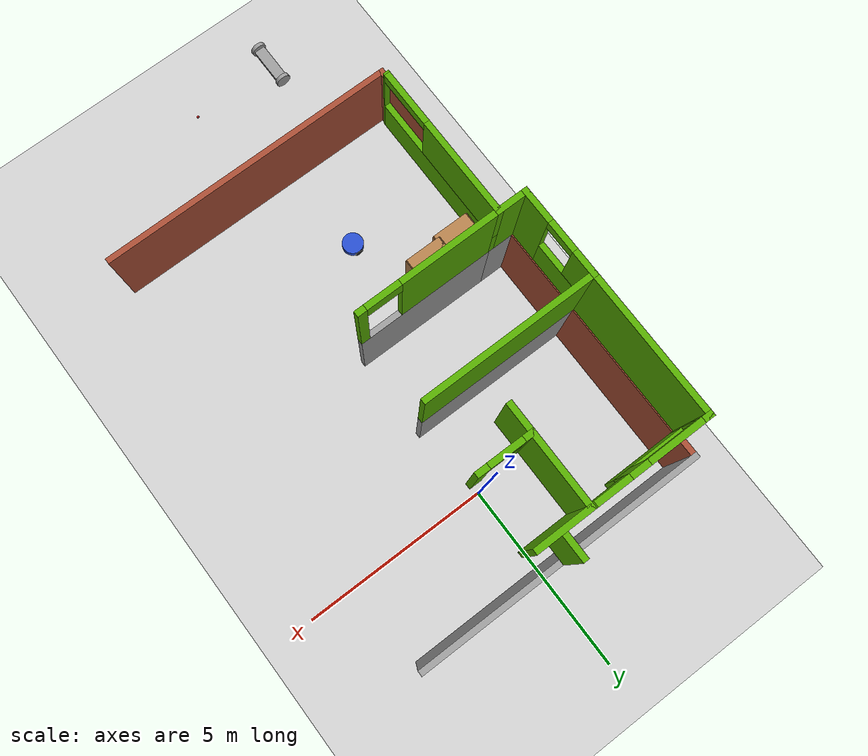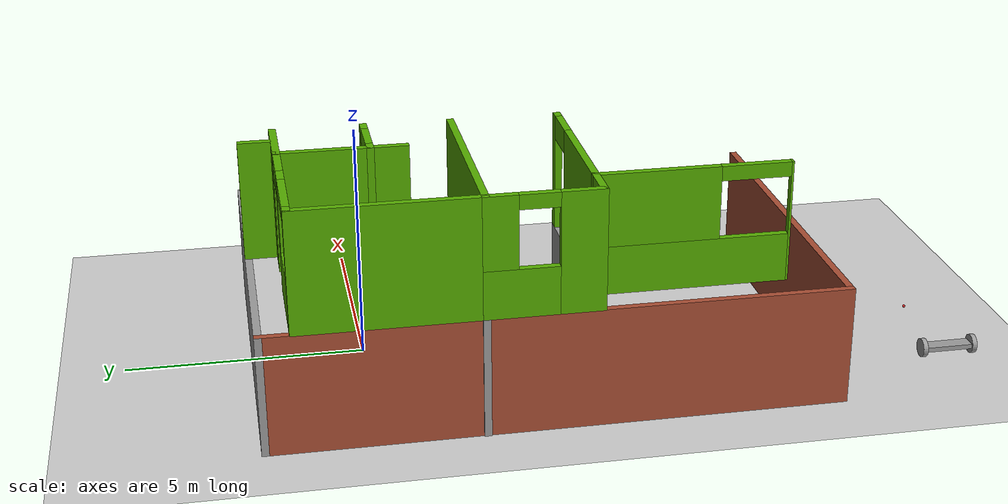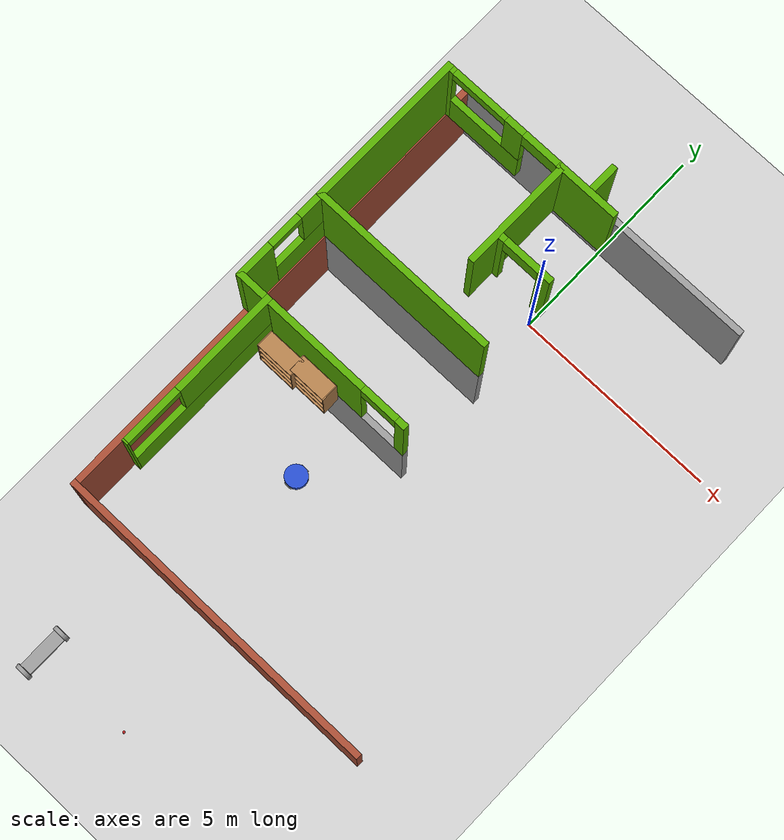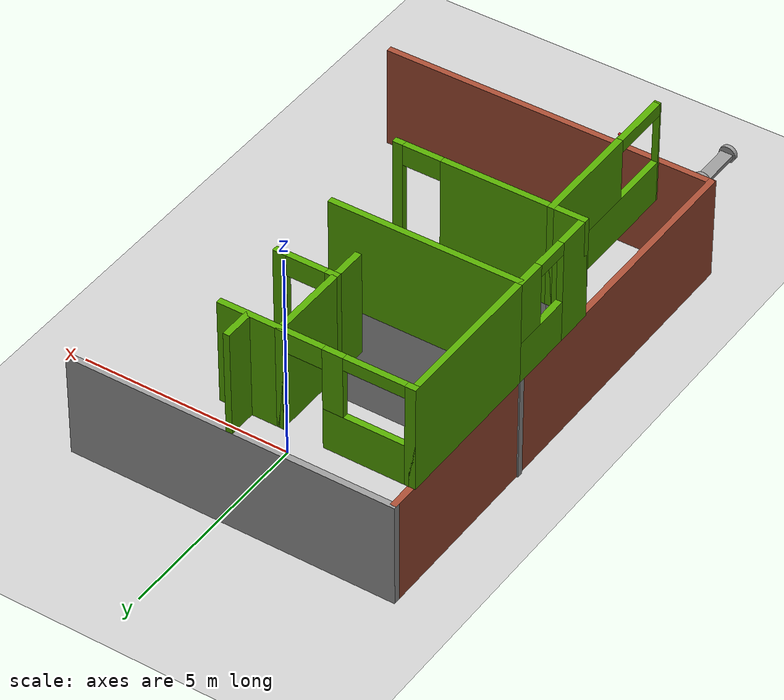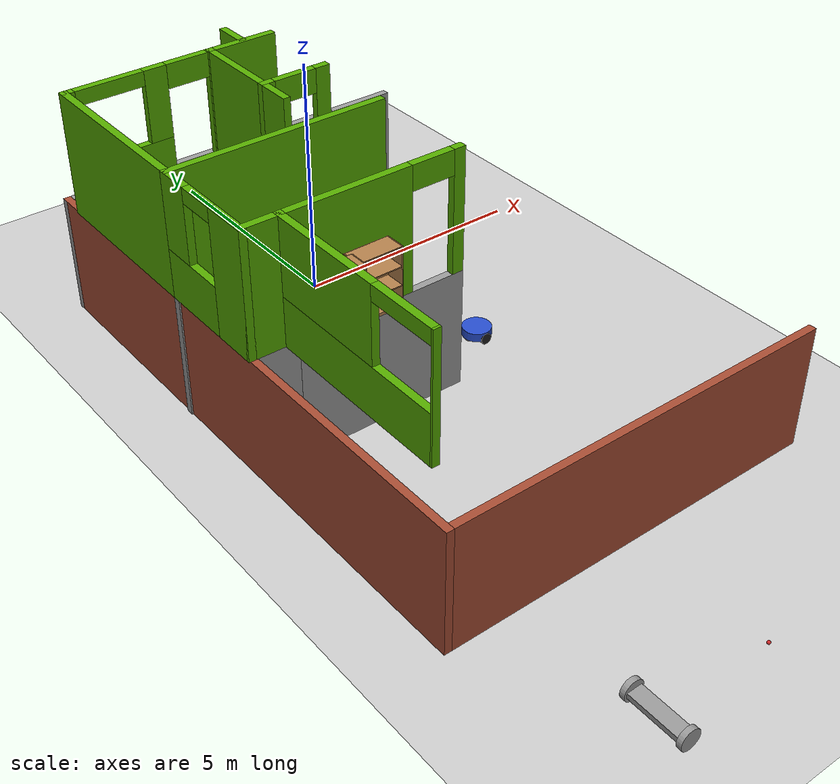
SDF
<sdf version="1.6">
 <world name="default">
  <model name="ground_plane">
   <static>1</static>
   <link name="link">
    <collision name="collision">
     <geometry><plane><normal>0 0 1</normal><size>100 100</size></plane></geometry>
     <surface><friction><ode><mu>100</mu><mu2>50</mu2></ode></friction></surface>
    </collision>
    <visual name="visual">
     <cast_shadows>0</cast_shadows>
     <geometry><plane><normal>0 0 1</normal><size>100 100</size></plane></geometry>
     <material>
      <script><uri>file://media/materials/scripts/gazebo.material</uri><name>Gazebo/Grey</name></script>
     </material>
    </visual>
   </link>
  </model>
  <model name="2floorHouse">
   <pose>4.58828 -3.57771 0 0 -0 0</pose>
   <link name="Wall_293">
    <pose>-7.97079 -2.615 2.5 0 -0 1.5708</pose>
    <visual name="Wall_293_Visual_0">
     <pose>-1.97712 0 1.25 0 -0 0</pose>
     <geometry><box><size>0.045764 0.15 2.5</size></box></geometry>
     <material>
      <script><uri>file://media/materials/scripts/gazebo.material</uri><name>Gazebo/Grey</name></script>
      <ambient>0.333333 0.666667 0 1</ambient>
     </material>
    </visual>
    <collision name="Wall_293_Collision_0">
     <geometry><box><size>0.045764 0.15 2.5</size></box></geometry>
     <pose>-1.97712 0 1.25 0 -0 0</pose>
    </collision>
    <visual name="Wall_293_Visual_1">
     <pose>0.022882 0 0.5 0 -0 0</pose>
     <geometry><box><size>3.95424 0.15 1</size></box></geometry>
     <material>
      <script><uri>file://media/materials/scripts/gazebo.material</uri><name>Gazebo/Grey</name></script>
      <ambient>0.333333 0.666667 0 1</ambient>
     </material>
    </visual>
    <collision name="Wall_293_Collision_1">
     <geometry><box><size>3.95424 0.15 1</size></box></geometry>
     <pose>0.022882 0 0.5 0 -0 0</pose>
    </collision>
    <visual name="Wall_293_Visual_2">
     <pose>0.722882 0 1.75 0 -0 0</pose>
     <geometry><box><size>2.55424 0.15 1.5</size></box></geometry>
     <material>
      <script><uri>file://media/materials/scripts/gazebo.material</uri><name>Gazebo/Grey</name></script>
      <ambient>0.333333 0.666667 0 1</ambient>
     </material>
    </visual>
    <collision name="Wall_293_Collision_2">
     <geometry><box><size>2.55424 0.15 1.5</size></box></geometry>
     <pose>0.722882 0 1.75 0 -0 0</pose>
    </collision>
    <visual name="Wall_293_Visual_3">
     <pose>-1.25424 0 2.35 0 -0 0</pose>
     <geometry><box><size>1.4 0.15 0.3</size></box></geometry>
     <material>
      <script><uri>file://media/materials/scripts/gazebo.material</uri><name>Gazebo/Grey</name></script>
      <ambient>0.333333 0.666667 0 1</ambient>
     </material>
    </visual>
    <collision name="Wall_293_Collision_3">
     <geometry><box><size>1.4 0.15 0.3</size></box></geometry>
     <pose>-1.25424 0 2.35 0 -0 0</pose>
    </collision>
   </link>
   <link name="Wall_294">
    <collision name="Wall_294_Collision">
     <geometry><box><size>0.86941 0.15 2.5</size></box></geometry>
     <pose>0 0 1.25 0 -0 0</pose>
    </collision>
    <visual name="Wall_294_Visual">
     <pose>0 0 1.25 0 -0 0</pose>
     <geometry><box><size>0.86941 0.15 2.5</size></box></geometry>
     <material>
      <script><uri>file://media/materials/scripts/gazebo.material</uri><name>Gazebo/Grey</name></script>
      <ambient>0.333333 0.666667 0 1</ambient>
     </material>
    </visual>
    <pose>-8.3305 -0.690004 2.5 0 -0 3.14159</pose>
   </link>
   <link name="Wall_295">
    <pose>-8.69021 0.434996 2.5 0 -0 1.5708</pose>
    <visual name="Wall_295_Visual_0">
     <pose>-0.748437 0 1.25 0 -0 0</pose>
     <geometry><box><size>0.903127 0.15 2.5</size></box></geometry>
     <material>
      <script><uri>file://media/materials/scripts/gazebo.material</uri><name>Gazebo/Grey</name></script>
      <ambient>0.333333 0.666667 0 1</ambient>
     </material>
    </visual>
    <collision name="Wall_295_Collision_0">
     <geometry><box><size>0.903127 0.15 2.5</size></box></geometry>
     <pose>-0.748437 0 1.25 0 -0 0</pose>
    </collision>
    <visual name="Wall_295_Visual_1">
     <pose>0.451563 0 0.5 0 -0 0</pose>
     <geometry><box><size>1.49687 0.15 1</size></box></geometry>
     <material>
      <script><uri>file://media/materials/scripts/gazebo.material</uri><name>Gazebo/Grey</name></script>
      <ambient>0.333333 0.666667 0 1</ambient>
     </material>
    </visual>
    <collision name="Wall_295_Collision_1">
     <geometry><box><size>1.49687 0.15 1</size></box></geometry>
     <pose>0.451563 0 0.5 0 -0 0</pose>
    </collision>
    <visual name="Wall_295_Visual_2">
     <pose>0.851563 0 1.75 0 -0 0</pose>
     <geometry><box><size>0.696873 0.15 1.5</size></box></geometry>
     <material>
      <script><uri>file://media/materials/scripts/gazebo.material</uri><name>Gazebo/Grey</name></script>
      <ambient>0.333333 0.666667 0 1</ambient>
     </material>
    </visual>
    <collision name="Wall_295_Collision_2">
     <geometry><box><size>0.696873 0.15 1.5</size></box></geometry>
     <pose>0.851563 0 1.75 0 -0 0</pose>
    </collision>
    <visual name="Wall_295_Visual_3">
     <pose>0.103127 0 2.35 0 -0 0</pose>
     <geometry><box><size>0.8 0.15 0.3</size></box></geometry>
     <material>
      <script><uri>file://media/materials/scripts/gazebo.material</uri><name>Gazebo/Grey</name></script>
      <ambient>0.333333 0.666667 0 1</ambient>
     </material>
    </visual>
    <collision name="Wall_295_Collision_3">
     <geometry><box><size>0.8 0.15 0.3</size></box></geometry>
     <pose>0.103127 0 2.35 0 -0 0</pose>
    </collision>
   </link>
   <link name="Wall_296">
    <collision name="Wall_296_Collision">
     <geometry><box><size>4.5 0.15 2.5</size></box></geometry>
     <pose>0 0 1.25 0 -0 0</pose>
    </collision>
    <visual name="Wall_296_Visual">
     <pose>0 0 1.25 0 -0 0</pose>
     <geometry><box><size>4.5 0.15 2.5</size></box></geometry>
     <material>
      <script><uri>file://media/materials/scripts/gazebo.material</uri><name>Gazebo/Grey</name></script>
      <ambient>0.333333 0.666667 0 1</ambient>
     </material>
    </visual>
    <pose>-6.5152 1.56 2.5 0 -0 0</pose>
   </link>
   <link name="Wall_298">
    <pose>-6.1555 -0.690004 2.5 0 -0 3.14159</pose>
    <visual name="Wall_298_Visual_0">
     <pose>-1.77022 0 1.25 0 -0 0</pose>
     <geometry><box><size>0.240159 0.15 2.5</size></box></geometry>
     <material>
      <script><uri>file://media/materials/scripts/gazebo.material</uri><name>Gazebo/Grey</name></script>
      <ambient>0.333333 0.666667 0 1</ambient>
     </material>
    </visual>
    <collision name="Wall_298_Collision_0">
     <geometry><box><size>0.240159 0.15 2.5</size></box></geometry>
     <pose>-1.77022 0 1.25 0 -0 0</pose>
    </collision>
    <visual name="Wall_298_Visual_1">
     <pose>0.570079 0 1.25 0 -0 0</pose>
     <geometry><box><size>2.64043 0.15 2.5</size></box></geometry>
     <material>
      <script><uri>file://media/materials/scripts/gazebo.material</uri><name>Gazebo/Grey</name></script>
      <ambient>0.333333 0.666667 0 1</ambient>
     </material>
    </visual>
    <collision name="Wall_298_Collision_1">
     <geometry><box><size>2.64043 0.15 2.5</size></box></geometry>
     <pose>0.570079 0 1.25 0 -0 0</pose>
    </collision>
    <visual name="Wall_298_Visual_2">
     <pose>-1.20014 0 2.25 0 -0 0</pose>
     <geometry><box><size>0.9 0.15 0.5</size></box></geometry>
     <material>
      <script><uri>file://media/materials/scripts/gazebo.material</uri><name>Gazebo/Grey</name></script>
      <ambient>0.333333 0.666667 0 1</ambient>
     </material>
    </visual>
    <collision name="Wall_298_Collision_2">
     <geometry><box><size>0.9 0.15 0.5</size></box></geometry>
     <pose>-1.20014 0 2.25 0 -0 0</pose>
    </collision>
   </link>
   <link name="Wall_303">
    <collision name="Wall_303_Collision">
     <geometry><box><size>3.8 0.15 2.5</size></box></geometry>
     <pose>0 0 1.25 0 -0 0</pose>
    </collision>
    <visual name="Wall_303_Visual">
     <pose>0 0 1.25 0 -0 0</pose>
     <geometry><box><size>3.8 0.15 2.5</size></box></geometry>
     <material>
      <script><uri>file://media/materials/scripts/gazebo.material</uri><name>Gazebo/Grey</name></script>
      <ambient>0.333333 0.666667 0 1</ambient>
     </material>
    </visual>
    <pose>-8.69021 3.385 2.5 0 -0 1.5708</pose>
   </link>
   <link name="Wall_304">
    <pose>-7.16521 5.21 2.5 0 -0 0</pose>
    <visual name="Wall_304_Visual_0">
     <pose>-1.47576 0 1.25 0 -0 0</pose>
     <geometry><box><size>0.248475 0.15 2.5</size></box></geometry>
     <material>
      <script><uri>file://media/materials/scripts/gazebo.material</uri><name>Gazebo/Grey</name></script>
      <ambient>0.333333 0.666667 0 1</ambient>
     </material>
    </visual>
    <collision name="Wall_304_Collision_0">
     <geometry><box><size>0.248475 0.15 2.5</size></box></geometry>
     <pose>-1.47576 0 1.25 0 -0 0</pose>
    </collision>
    <visual name="Wall_304_Visual_1">
     <pose>1.51114 0 1.25 0 -0 0</pose>
     <geometry><box><size>0.177722 0.15 2.5</size></box></geometry>
     <material>
      <script><uri>file://media/materials/scripts/gazebo.material</uri><name>Gazebo/Grey</name></script>
      <ambient>0.333333 0.666667 0 1</ambient>
     </material>
    </visual>
    <collision name="Wall_304_Collision_1">
     <geometry><box><size>0.177722 0.15 2.5</size></box></geometry>
     <pose>1.51114 0 1.25 0 -0 0</pose>
    </collision>
    <visual name="Wall_304_Visual_2">
     <pose>-0.414623 0 0.5 0 -0 0</pose>
     <geometry><box><size>1.8738 0.15 1</size></box></geometry>
     <material>
      <script><uri>file://media/materials/scripts/gazebo.material</uri><name>Gazebo/Grey</name></script>
      <ambient>0.333333 0.666667 0 1</ambient>
     </material>
    </visual>
    <collision name="Wall_304_Collision_2">
     <geometry><box><size>1.8738 0.15 1</size></box></geometry>
     <pose>-0.414623 0 0.5 0 -0 0</pose>
    </collision>
    <visual name="Wall_304_Visual_3">
     <pose>0.285377 0 1.75 0 -0 0</pose>
     <geometry><box><size>0.473803 0.15 1.5</size></box></geometry>
     <material>
      <script><uri>file://media/materials/scripts/gazebo.material</uri><name>Gazebo/Grey</name></script>
      <ambient>0.333333 0.666667 0 1</ambient>
     </material>
    </visual>
    <collision name="Wall_304_Collision_3">
     <geometry><box><size>0.473803 0.15 1.5</size></box></geometry>
     <pose>0.285377 0 1.75 0 -0 0</pose>
    </collision>
    <visual name="Wall_304_Visual_4">
     <pose>0.972278 0 2.25 0 -0 0</pose>
     <geometry><box><size>0.9 0.15 0.5</size></box></geometry>
     <material>
      <script><uri>file://media/materials/scripts/gazebo.material</uri><name>Gazebo/Grey</name></script>
      <ambient>0.333333 0.666667 0 1</ambient>
     </material>
    </visual>
    <collision name="Wall_304_Collision_4">
     <geometry><box><size>0.9 0.15 0.5</size></box></geometry>
     <pose>0.972278 0 2.25 0 -0 0</pose>
    </collision>
    <visual name="Wall_304_Visual_5">
     <pose>-0.651525 0 2.35 0 -0 0</pose>
     <geometry><box><size>1.4 0.15 0.3</size></box></geometry>
     <material>
      <script><uri>file://media/materials/scripts/gazebo.material</uri><name>Gazebo/Grey</name></script>
      <ambient>0.333333 0.666667 0 1</ambient>
     </material>
    </visual>
    <collision name="Wall_304_Collision_5">
     <geometry><box><size>1.4 0.15 0.3</size></box></geometry>
     <pose>-0.651525 0 2.35 0 -0 0</pose>
    </collision>
   </link>
   <link name="Wall_305">
    <collision name="Wall_305_Collision">
     <geometry><box><size>2.7 0.15 2.5</size></box></geometry>
     <pose>0 0 1.25 0 -0 0</pose>
    </collision>
    <visual name="Wall_305_Visual">
     <pose>0 0 1.25 0 -0 0</pose>
     <geometry><box><size>2.7 0.15 2.5</size></box></geometry>
     <material>
      <script><uri>file://media/materials/scripts/gazebo.material</uri><name>Gazebo/Grey</name></script>
      <ambient>0.333333 0.666667 0 1</ambient>
     </material>
    </visual>
    <pose>-5.6402 3.935 2.5 0 0 -1.5708</pose>
   </link>
   <link name="Wall_306">
    <collision name="Wall_306_Collision">
     <geometry><box><size>1.5 0.15 2.5</size></box></geometry>
     <pose>0 0 1.25 0 -0 0</pose>
    </collision>
    <visual name="Wall_306_Visual">
     <pose>0 0 1.25 0 -0 0</pose>
     <geometry><box><size>1.5 0.15 2.5</size></box></geometry>
     <material>
      <script><uri>file://media/materials/scripts/gazebo.material</uri><name>Gazebo/Grey</name></script>
      <ambient>0.333333 0.666667 0 1</ambient>
     </material>
    </visual>
    <pose>-4.96521 5.21 2.5 0 -0 0</pose>
   </link>
   <link name="Wall_308">
    <pose>-4.965 3.36 2.5 0 -0 3.14159</pose>
    <visual name="Wall_308_Visual_0">
     <pose>-0.593035 0 1.25 0 -0 0</pose>
     <geometry><box><size>0.314339 0.15 2.5</size></box></geometry>
     <material>
      <script><uri>file://media/materials/scripts/gazebo.material</uri><name>Gazebo/Grey</name></script>
      <ambient>0.333333 0.666667 0 1</ambient>
     </material>
    </visual>
    <collision name="Wall_308_Collision_0">
     <geometry><box><size>0.314339 0.15 2.5</size></box></geometry>
     <pose>-0.593035 0 1.25 0 -0 0</pose>
    </collision>
    <visual name="Wall_308_Visual_1">
     <pose>0.607169 0 1.25 0 -0 0</pose>
     <geometry><box><size>0.286071 0.15 2.5</size></box></geometry>
     <material>
      <script><uri>file://media/materials/scripts/gazebo.material</uri><name>Gazebo/Grey</name></script>
      <ambient>0.333333 0.666667 0 1</ambient>
     </material>
    </visual>
    <collision name="Wall_308_Collision_1">
     <geometry><box><size>0.286071 0.15 2.5</size></box></geometry>
     <pose>0.607169 0 1.25 0 -0 0</pose>
    </collision>
    <visual name="Wall_308_Visual_2">
     <pose>0.014134 0 2.25 0 -0 0</pose>
     <geometry><box><size>0.9 0.15 0.5</size></box></geometry>
     <material>
      <script><uri>file://media/materials/scripts/gazebo.material</uri><name>Gazebo/Grey</name></script>
      <ambient>0.333333 0.666667 0 1</ambient>
     </material>
    </visual>
    <collision name="Wall_308_Collision_2">
     <geometry><box><size>0.9 0.15 0.5</size></box></geometry>
     <pose>0.014134 0 2.25 0 -0 0</pose>
    </collision>
   </link>
   <link name="Wall_319">
    <collision name="Wall_319_Collision">
     <geometry><box><size>0.75 0.15 2.5</size></box></geometry>
     <pose>0 0 1.25 0 -0 0</pose>
    </collision>
    <visual name="Wall_319_Visual">
     <pose>0 0 1.25 0 -0 0</pose>
     <geometry><box><size>0.75 0.15 2.5</size></box></geometry>
     <material>
      <script><uri>file://media/materials/scripts/gazebo.material</uri><name>Gazebo/Grey</name></script>
      <ambient>0.333333 0.666667 0 1</ambient>
     </material>
    </visual>
    <pose>-4.90971 5.56961 2.5 0 0 -1.5708</pose>
   </link>
   <link name="Wall_351">
    <collision name="Wall_351_Collision">
     <geometry><box><size>7.75 0.15 2.5</size></box></geometry>
     <pose>0 0 1.25 0 -0 0</pose>
    </collision>
    <visual name="Wall_351_Visual">
     <pose>0 0 1.25 0 -0 0</pose>
     <geometry><box><size>7.75 0.15 2.5</size></box></geometry>
     <material>
      <script><uri>file://media/materials/scripts/gazebo.material</uri><name>Gazebo/Grey</name></script>
      <ambient>1 1 1 1</ambient>
     </material>
    </visual>
    <pose>-4.8598 5.87 0 0 -0 3.14159</pose>
   </link>
   <link name="Wall_352">
    <collision name="Wall_352_Collision">
     <geometry><box><size>11.75 0.15 2.5</size></box></geometry>
     <pose>0 0 1.25 0 -0 0</pose>
    </collision>
    <visual name="Wall_352_Visual">
     <pose>0 0 1.25 0 -0 0</pose>
     <geometry><box><size>11.75 0.15 2.5</size></box></geometry>
     <material>
      <script><uri>file://media/materials/scripts/gazebo.material</uri><name>Gazebo/Bricks</name></script>
      <ambient>1 1 1 1</ambient>
     </material>
    </visual>
    <pose>-8.6598 0.069996 0 0 0 -1.5708</pose>
   </link>
   <link name="Wall_357">
    <collision name="Wall_357_Collision">
     <geometry><box><size>8 0.15 2.5</size></box></geometry>
     <pose>0 0 1.25 0 -0 0</pose>
    </collision>
    <visual name="Wall_357_Visual">
     <pose>0 0 1.25 0 -0 0</pose>
     <geometry><box><size>8 0.15 2.5</size></box></geometry>
     <material>
      <script><uri>file://media/materials/scripts/gazebo.material</uri><name>Gazebo/Bricks</name></script>
      <ambient>1 1 1 1</ambient>
     </material>
    </visual>
    <pose>-4.7348 -5.73 0 0 -0 0</pose>
   </link>
   <link name="Wall_43">
    <collision name="Wall_43_Collision">
     <geometry><box><size>0.873056 0.15 2.5</size></box></geometry>
     <pose>0 0 1.25 0 -0 0</pose>
    </collision>
    <visual name="Wall_43_Visual">
     <pose>0 0 1.25 0 -0 0</pose>
     <geometry><box><size>0.873056 0.15 2.5</size></box></geometry>
     <material>
      <script><uri>file://media/materials/scripts/gazebo.material</uri><name>Gazebo/Grey</name></script>
      <ambient>1 1 1 1</ambient>
     </material>
    </visual>
    <pose>-8.20927 -0.690004 0 0 -0 3.14159</pose>
   </link>
   <link name="Wall_48">
    <collision name="Wall_48_Collision">
     <geometry><box><size>4.5 0.15 2.5</size></box></geometry>
     <pose>0 0 1.25 0 -0 0</pose>
    </collision>
    <visual name="Wall_48_Visual">
     <pose>0 0 1.25 0 -0 0</pose>
     <geometry><box><size>4.5 0.15 2.5</size></box></geometry>
     <material>
      <script><uri>file://media/materials/scripts/gazebo.material</uri><name>Gazebo/Grey</name></script>
      <ambient>1 1 1 1</ambient>
     </material>
    </visual>
    <pose>-6.5152 1.56 0 0 -0 0</pose>
   </link>
   <link name="Wall_52">
    <collision name="Wall_52_Collision">
     <geometry><box><size>3.65753 0.15 2.5</size></box></geometry>
     <pose>0 0 1.25 0 -0 0</pose>
    </collision>
    <visual name="Wall_52_Visual">
     <pose>0 0 1.25 0 -0 0</pose>
     <geometry><box><size>3.65753 0.15 2.5</size></box></geometry>
     <material>
      <script><uri>file://media/materials/scripts/gazebo.material</uri><name>Gazebo/Grey</name></script>
      <ambient>1 1 1 1</ambient>
     </material>
    </visual>
    <pose>-6.09397 -0.690004 0 0 -0 3.14159</pose>
   </link>
   <static>1</static>
  </model>
  <model name="RoboCup SPL Ball">
   <static>0</static>
   <link name="ball">
    <inertial>
     <mass>0.0056</mass>
     <inertia>
      <ixx>2.37e-06</ixx>
      <iyy>2.37e-06</iyy>
      <izz>2.37e-06</izz>
      <ixy>0</ixy>
      <ixz>0</ixz>
      <iyz>0</iyz>
     </inertia>
    </inertial>
    <collision name="collision"><geometry><sphere><radius>0.0325</radius></sphere></geometry></collision>
    <visual name="visual">
     <geometry><sphere><radius>0.0325</radius></sphere></geometry>
     <material>
      <script><uri>file://media/materials/scripts/gazebo.material</uri><name>Gazebo/RedBright</name></script>
     </material>
    </visual>
   </link>
   <pose>-0.153773 -12.2161 0.0425 0 -0 0</pose>
  </model>
  <model name="bookshelf">
   <static>1</static>
   <link name="link">
    <inertial><mass>1</mass></inertial>
    <collision name="back">
     <pose>0 0.005 0.6 0 -0 0</pose>
     <geometry><box><size>0.9 0.01 1.2</size></box></geometry>
    </collision>
    <visual name="visual1">
     <pose>0 0.005 0.6 0 -0 0</pose>
     <geometry><box><size>0.9 0.01 1.2</size></box></geometry>
     <material>
      <script><uri>file://media/materials/scripts/gazebo.material</uri><name>Gazebo/Wood</name></script>
     </material>
    </visual>
    <collision name="left_side">
     <pose>0.45 -0.195 0.6 0 -0 0</pose>
     <geometry><box><size>0.02 0.4 1.2</size></box></geometry>
    </collision>
    <visual name="visual2">
     <pose>0.45 -0.195 0.6 0 -0 0</pose>
     <geometry><box><size>0.02 0.4 1.2</size></box></geometry>
     <material>
      <script><uri>file://media/materials/scripts/gazebo.material</uri><name>Gazebo/Wood</name></script>
     </material>
    </visual>
    <collision name="right_side">
     <pose>-0.45 -0.195 0.6 0 -0 0</pose>
     <geometry><box><size>0.02 0.4 1.2</size></box></geometry>
    </collision>
    <visual name="visual3">
     <pose>-0.45 -0.195 0.6 0 -0 0</pose>
     <geometry><box><size>0.02 0.4 1.2</size></box></geometry>
     <material>
      <script><uri>file://media/materials/scripts/gazebo.material</uri><name>Gazebo/Wood</name></script>
     </material>
    </visual>
    <collision name="bottom">
     <pose>0 -0.195 0.03 0 -0 0</pose>
     <geometry><box><size>0.88 0.4 0.06</size></box></geometry>
    </collision>
    <visual name="visual4">
     <pose>0 -0.195 0.03 0 -0 0</pose>
     <geometry><box><size>0.88 0.4 0.06</size></box></geometry>
     <material>
      <script><uri>file://media/materials/scripts/gazebo.material</uri><name>Gazebo/Wood</name></script>
     </material>
    </visual>
    <collision name="top">
     <pose>0 -0.195 1.19 0 -0 0</pose>
     <geometry><box><size>0.88 0.4 0.02</size></box></geometry>
    </collision>
    <visual name="visual5">
     <pose>0 -0.195 1.19 0 -0 0</pose>
     <geometry><box><size>0.88 0.4 0.02</size></box></geometry>
     <material>
      <script><uri>file://media/materials/scripts/gazebo.material</uri><name>Gazebo/Wood</name></script>
     </material>
    </visual>
    <collision name="low_shelf">
     <pose>0 -0.195 0.43 0 -0 0</pose>
     <geometry><box><size>0.88 0.4 0.02</size></box></geometry>
    </collision>
    <visual name="visual6">
     <pose>0 -0.195 0.43 0 -0 0</pose>
     <geometry><box><size>0.88 0.4 0.02</size></box></geometry>
     <material>
      <script><uri>file://media/materials/scripts/gazebo.material</uri><name>Gazebo/Wood</name></script>
     </material>
    </visual>
    <collision name="high_shelf">
     <pose>0 -0.195 0.8 0 -0 0</pose>
     <geometry><box><size>0.88 0.4 0.02</size></box></geometry>
    </collision>
    <visual name="visual7">
     <pose>0 -0.195 0.8 0 -0 0</pose>
     <geometry><box><size>0.88 0.4 0.02</size></box></geometry>
     <material>
      <script><uri>file://media/materials/scripts/gazebo.material</uri><name>Gazebo/Wood</name></script>
     </material>
    </visual>
   </link>
   <pose>-2.65257 -4.5149 2.70784 0 -0 0</pose>
  </model>
  <model name="bookshelf_clone">
   <static>1</static>
   <link name="link">
    <inertial><mass>1</mass></inertial>
    <collision name="back">
     <pose>0 0.005 0.6 0 -0 0</pose>
     <geometry><box><size>0.9 0.01 1.2</size></box></geometry>
    </collision>
    <visual name="visual1">
     <pose>0 0.005 0.6 0 -0 0</pose>
     <geometry><box><size>0.9 0.01 1.2</size></box></geometry>
     <material>
      <script><uri>file://media/materials/scripts/gazebo.material</uri><name>Gazebo/Wood</name></script>
     </material>
    </visual>
    <collision name="left_side">
     <pose>0.45 -0.195 0.6 0 -0 0</pose>
     <geometry><box><size>0.02 0.4 1.2</size></box></geometry>
    </collision>
    <visual name="visual2">
     <pose>0.45 -0.195 0.6 0 -0 0</pose>
     <geometry><box><size>0.02 0.4 1.2</size></box></geometry>
     <material>
      <script><uri>file://media/materials/scripts/gazebo.material</uri><name>Gazebo/Wood</name></script>
     </material>
    </visual>
    <collision name="right_side">
     <pose>-0.45 -0.195 0.6 0 -0 0</pose>
     <geometry><box><size>0.02 0.4 1.2</size></box></geometry>
    </collision>
    <visual name="visual3">
     <pose>-0.45 -0.195 0.6 0 -0 0</pose>
     <geometry><box><size>0.02 0.4 1.2</size></box></geometry>
     <material>
      <script><uri>file://media/materials/scripts/gazebo.material</uri><name>Gazebo/Wood</name></script>
     </material>
    </visual>
    <collision name="bottom">
     <pose>0 -0.195 0.03 0 -0 0</pose>
     <geometry><box><size>0.88 0.4 0.06</size></box></geometry>
    </collision>
    <visual name="visual4">
     <pose>0 -0.195 0.03 0 -0 0</pose>
     <geometry><box><size>0.88 0.4 0.06</size></box></geometry>
     <material>
      <script><uri>file://media/materials/scripts/gazebo.material</uri><name>Gazebo/Wood</name></script>
     </material>
    </visual>
    <collision name="top">
     <pose>0 -0.195 1.19 0 -0 0</pose>
     <geometry><box><size>0.88 0.4 0.02</size></box></geometry>
    </collision>
    <visual name="visual5">
     <pose>0 -0.195 1.19 0 -0 0</pose>
     <geometry><box><size>0.88 0.4 0.02</size></box></geometry>
     <material>
      <script><uri>file://media/materials/scripts/gazebo.material</uri><name>Gazebo/Wood</name></script>
     </material>
    </visual>
    <collision name="low_shelf">
     <pose>0 -0.195 0.43 0 -0 0</pose>
     <geometry><box><size>0.88 0.4 0.02</size></box></geometry>
    </collision>
    <visual name="visual6">
     <pose>0 -0.195 0.43 0 -0 0</pose>
     <geometry><box><size>0.88 0.4 0.02</size></box></geometry>
     <material>
      <script><uri>file://media/materials/scripts/gazebo.material</uri><name>Gazebo/Wood</name></script>
     </material>
    </visual>
    <collision name="high_shelf">
     <pose>0 -0.195 0.8 0 -0 0</pose>
     <geometry><box><size>0.88 0.4 0.02</size></box></geometry>
    </collision>
    <visual name="visual7">
     <pose>0 -0.195 0.8 0 -0 0</pose>
     <geometry><box><size>0.88 0.4 0.02</size></box></geometry>
     <material>
      <script><uri>file://media/materials/scripts/gazebo.material</uri><name>Gazebo/Wood</name></script>
     </material>
    </visual>
   </link>
   <pose>-1.85138 -4.43483 2.70784 0 -0 0</pose>
  </model>
  <model name="Tartufino">
   <link name="link_0">
    <pose>0 0 0.04 0 -0 0</pose>
    <inertial>
     <mass>1</mass>
     <inertia><ixx>0.145833</ixx><ixy>0</ixy><ixz>0</ixz><iyy>0.145833</iyy><iyz>0</iyz><izz>0.125</izz></inertia>
    </inertial>
    <visual name="visual">
     <geometry><cylinder><radius>0.25</radius><length>0.15</length></cylinder></geometry>
     <material>
      <lighting>1</lighting>
      <script><uri>file://media/materials/scripts/gazebo.material</uri><name>Gazebo/Blue</name></script>
      <ambient>0.3 0.3 0.3 1</ambient>
      <diffuse>0.7 0.7 0.7 1</diffuse>
      <specular>0.01 0.01 0.01 1</specular>
      <emissive>0 0 0 1</emissive>
      <shader type="vertex"><normal_map>__default__</normal_map></shader>
     </material>
    </visual>
    <collision name="collision">
     <geometry><cylinder><radius>0.25</radius><length>0.15</length></cylinder></geometry>
     <surface>
      <friction>
       <ode><mu>1</mu><mu2>1</mu2><fdir1>0 0 0</fdir1><slip1>0</slip1><slip2>0</slip2></ode>
       <torsional>
        <coefficient>1</coefficient>
        <patch_radius>0</patch_radius>
        <surface_radius>0</surface_radius>
        <use_patch_radius>1</use_patch_radius>
        <ode><slip>0</slip></ode>
       </torsional>
      </friction>
      <bounce><restitution_coefficient>0</restitution_coefficient><threshold>1e+06</threshold></bounce>
      <contact>
       <collide_without_contact>0</collide_without_contact>
       <collide_without_contact_bitmask>1</collide_without_contact_bitmask>
       <collide_bitmask>1</collide_bitmask>
       <ode>
        <soft_cfm>0</soft_cfm>
        <soft_erp>0.2</soft_erp>
        <kp>1e+13</kp>
        <kd>1</kd>
        <max_vel>0.01</max_vel>
        <min_depth>0</min_depth>
       </ode>
       <bullet>
        <split_impulse>1</split_impulse>
        <split_impulse_penetration_threshold>-0.01</split_impulse_penetration_threshold>
        <soft_cfm>0</soft_cfm>
        <soft_erp>0.2</soft_erp>
        <kp>1e+13</kp>
        <kd>1</kd>
       </bullet>
      </contact>
     </surface>
    </collision>
   </link>
   <link name="link_1">
    <pose>0 0.2 -0.01 0 -0 0</pose>
    <inertial>
     <mass>1</mass>
     <inertia><ixx>0.145833</ixx><ixy>0</ixy><ixz>0</ixz><iyy>0.145833</iyy><iyz>0</iyz><izz>0.125</izz></inertia>
    </inertial>
    <visual name="visual">
     <pose>0 0 0 1.5708 -0 0</pose>
     <geometry><cylinder><radius>0.1</radius><length>0.1</length></cylinder></geometry>
     <material>
      <lighting>1</lighting>
      <script><uri>file://media/materials/scripts/gazebo.material</uri><name>Gazebo/Black</name></script>
      <ambient>0.3 0.3 0.3 1</ambient>
      <diffuse>0.7 0.7 0.7 1</diffuse>
      <specular>0.01 0.01 0.01 1</specular>
      <emissive>0 0 0 1</emissive>
      <shader type="vertex"><normal_map>__default__</normal_map></shader>
     </material>
    </visual>
    <collision name="collision">
     <pose>0 0 0 1.5708 -0 0</pose>
     <geometry><cylinder><radius>0.1</radius><length>0.1</length></cylinder></geometry>
     <surface>
      <friction>
       <ode><mu>1</mu><mu2>1</mu2><fdir1>0 0 0</fdir1><slip1>0</slip1><slip2>0</slip2></ode>
       <torsional>
        <coefficient>1</coefficient>
        <patch_radius>0</patch_radius>
        <surface_radius>0</surface_radius>
        <use_patch_radius>1</use_patch_radius>
        <ode><slip>0</slip></ode>
       </torsional>
      </friction>
      <bounce><restitution_coefficient>0</restitution_coefficient><threshold>1e+06</threshold></bounce>
      <contact>
       <collide_without_contact>0</collide_without_contact>
       <collide_without_contact_bitmask>1</collide_without_contact_bitmask>
       <collide_bitmask>1</collide_bitmask>
       <ode>
        <soft_cfm>0</soft_cfm>
        <soft_erp>0.2</soft_erp>
        <kp>1e+13</kp>
        <kd>1</kd>
        <max_vel>0.01</max_vel>
        <min_depth>0</min_depth>
       </ode>
       <bullet>
        <split_impulse>1</split_impulse>
        <split_impulse_penetration_threshold>-0.01</split_impulse_penetration_threshold>
        <soft_cfm>0</soft_cfm>
        <soft_erp>0.2</soft_erp>
        <kp>1e+13</kp>
        <kd>1</kd>
       </bullet>
      </contact>
     </surface>
    </collision>
   </link>
   <link name="link_1_clone">
    <pose>0 -0.2 -0.01 0 -0 0</pose>
    <inertial>
     <mass>1</mass>
     <inertia><ixx>0.145833</ixx><ixy>0</ixy><ixz>0</ixz><iyy>0.145833</iyy><iyz>0</iyz><izz>0.125</izz></inertia>
    </inertial>
    <visual name="visual">
     <pose>0 0 0 1.5708 -0 0</pose>
     <geometry><cylinder><radius>0.1</radius><length>0.1</length></cylinder></geometry>
     <material>
      <lighting>1</lighting>
      <script><uri>file://media/materials/scripts/gazebo.material</uri><name>Gazebo/Black</name></script>
      <ambient>0.3 0.3 0.3 1</ambient>
      <diffuse>0.7 0.7 0.7 1</diffuse>
      <specular>0.01 0.01 0.01 1</specular>
      <emissive>0 0 0 1</emissive>
      <shader type="vertex"><normal_map>__default__</normal_map></shader>
     </material>
    </visual>
    <collision name="collision">
     <pose>0 0 0 1.5708 -0 0</pose>
     <geometry><cylinder><radius>0.1</radius><length>0.1</length></cylinder></geometry>
     <surface>
      <friction>
       <ode><mu>1</mu><mu2>1</mu2><fdir1>0 0 0</fdir1><slip1>0</slip1><slip2>0</slip2></ode>
       <torsional>
        <coefficient>1</coefficient>
        <patch_radius>0</patch_radius>
        <surface_radius>0</surface_radius>
        <use_patch_radius>1</use_patch_radius>
        <ode><slip>0</slip></ode>
       </torsional>
      </friction>
      <bounce><restitution_coefficient>0</restitution_coefficient><threshold>1e+06</threshold></bounce>
      <contact>
       <collide_without_contact>0</collide_without_contact>
       <collide_without_contact_bitmask>1</collide_without_contact_bitmask>
       <collide_bitmask>1</collide_bitmask>
       <ode>
        <soft_cfm>0</soft_cfm>
        <soft_erp>0.2</soft_erp>
        <kp>1e+13</kp>
        <kd>1</kd>
        <max_vel>0.01</max_vel>
        <min_depth>0</min_depth>
       </ode>
       <bullet>
        <split_impulse>1</split_impulse>
        <split_impulse_penetration_threshold>-0.01</split_impulse_penetration_threshold>
        <soft_cfm>0</soft_cfm>
        <soft_erp>0.2</soft_erp>
        <kp>1e+13</kp>
        <kd>1</kd>
       </bullet>
      </contact>
     </surface>
    </collision>
   </link>
   <link name="link_2">
    <pose>-0.15 0 -0.01 0 -0 0</pose>
    <inertial>
     <mass>1</mass>
     <inertia><ixx>0.1</ixx><ixy>0</ixy><ixz>0</ixz><iyy>0.1</iyy><iyz>0</iyz><izz>0.1</izz></inertia>
    </inertial>
    <visual name="visual">
     <geometry><sphere><radius>0.1</radius></sphere></geometry>
     <material>
      <lighting>1</lighting>
      <script><uri>file://media/materials/scripts/gazebo.material</uri><name>Gazebo/Grey</name></script>
      <ambient>0.3 0.3 0.3 1</ambient>
      <diffuse>0.7 0.7 0.7 1</diffuse>
      <specular>0.01 0.01 0.01 1</specular>
      <emissive>0 0 0 1</emissive>
      <shader type="vertex"><normal_map>__default__</normal_map></shader>
     </material>
    </visual>
    <collision name="collision">
     <geometry><sphere><radius>0.1</radius></sphere></geometry>
     <surface>
      <friction>
       <ode><mu>0</mu><mu2>0</mu2><fdir1>0 0 0</fdir1><slip1>1</slip1><slip2>1</slip2></ode>
       <torsional>
        <coefficient>1</coefficient>
        <patch_radius>0</patch_radius>
        <surface_radius>0</surface_radius>
        <use_patch_radius>1</use_patch_radius>
        <ode><slip>0</slip></ode>
       </torsional>
      </friction>
      <bounce><restitution_coefficient>0</restitution_coefficient><threshold>1e+06</threshold></bounce>
      <contact>
       <collide_without_contact>0</collide_without_contact>
       <collide_without_contact_bitmask>1</collide_without_contact_bitmask>
       <collide_bitmask>1</collide_bitmask>
       <ode>
        <soft_cfm>0</soft_cfm>
        <soft_erp>0.2</soft_erp>
        <kp>1e+13</kp>
        <kd>1</kd>
        <max_vel>0.01</max_vel>
        <min_depth>0</min_depth>
       </ode>
       <bullet>
        <split_impulse>1</split_impulse>
        <split_impulse_penetration_threshold>-0.01</split_impulse_penetration_threshold>
        <soft_cfm>0</soft_cfm>
        <soft_erp>0.2</soft_erp>
        <kp>1e+13</kp>
        <kd>1</kd>
       </bullet>
      </contact>
     </surface>
    </collision>
   </link>
   <link name="link_2_clone">
    <pose>0.15 0 -0.01 0 -0 0</pose>
    <inertial>
     <mass>1</mass>
     <inertia><ixx>0.1</ixx><ixy>0</ixy><ixz>0</ixz><iyy>0.1</iyy><iyz>0</iyz><izz>0.1</izz></inertia>
    </inertial>
    <visual name="visual">
     <geometry><sphere><radius>0.1</radius></sphere></geometry>
     <material>
      <lighting>1</lighting>
      <script><uri>file://media/materials/scripts/gazebo.material</uri><name>Gazebo/Grey</name></script>
      <ambient>0.3 0.3 0.3 1</ambient>
      <diffuse>0.7 0.7 0.7 1</diffuse>
      <specular>0.01 0.01 0.01 1</specular>
      <emissive>0 0 0 1</emissive>
      <shader type="vertex"><normal_map>__default__</normal_map></shader>
     </material>
    </visual>
    <collision name="collision">
     <geometry><sphere><radius>0.1</radius></sphere></geometry>
     <surface>
      <friction>
       <ode><mu>0</mu><mu2>0</mu2><fdir1>0 0 0</fdir1><slip1>1</slip1><slip2>1</slip2></ode>
       <torsional>
        <coefficient>1</coefficient>
        <patch_radius>0</patch_radius>
        <surface_radius>0</surface_radius>
        <use_patch_radius>1</use_patch_radius>
        <ode><slip>0</slip></ode>
       </torsional>
      </friction>
      <bounce><restitution_coefficient>0</restitution_coefficient><threshold>1e+06</threshold></bounce>
      <contact>
       <collide_without_contact>0</collide_without_contact>
       <collide_without_contact_bitmask>1</collide_without_contact_bitmask>
       <collide_bitmask>1</collide_bitmask>
       <ode>
        <soft_cfm>0</soft_cfm>
        <soft_erp>0.2</soft_erp>
        <kp>1e+13</kp>
        <kd>1</kd>
        <max_vel>0.01</max_vel>
        <min_depth>0</min_depth>
       </ode>
       <bullet>
        <split_impulse>1</split_impulse>
        <split_impulse_penetration_threshold>-0.01</split_impulse_penetration_threshold>
        <soft_cfm>0</soft_cfm>
        <soft_erp>0.2</soft_erp>
        <kp>1e+13</kp>
        <kd>1</kd>
       </bullet>
      </contact>
     </surface>
    </collision>
   </link>
   <joint name="link_0_JOINT_1" type="revolute">
    <parent>link_0</parent>
    <child>link_1</child>
    <axis>
     <xyz>0 -1 0</xyz>
     <use_parent_model_frame>0</use_parent_model_frame>
     <limit>
      <lower>-1.79769e+308</lower>
      <upper>1.79769e+308</upper>
      <effort>-1</effort>
      <velocity>-1</velocity>
     </limit>
     <dynamics>
      <spring_reference>0</spring_reference>
      <spring_stiffness>0</spring_stiffness>
      <damping>0</damping>
      <friction>0</friction>
     </dynamics>
    </axis>
    <physics>
     <ode><limit><cfm>0</cfm><erp>0.2</erp></limit><suspension><cfm>0</cfm><erp>0.2</erp></suspension></ode>
    </physics>
   </joint>
   <joint name="link_0_JOINT_2" type="revolute">
    <parent>link_0</parent>
    <child>link_1_clone</child>
    <pose>0 -0.01 0 0 -0 0</pose>
    <axis>
     <xyz>0 1 0</xyz>
     <use_parent_model_frame>0</use_parent_model_frame>
     <limit>
      <lower>-1.79769e+308</lower>
      <upper>1.79769e+308</upper>
      <effort>-1</effort>
      <velocity>-1</velocity>
     </limit>
     <dynamics>
      <spring_reference>0</spring_reference>
      <spring_stiffness>0</spring_stiffness>
      <damping>0</damping>
     </dynamics>
    </axis>
    <physics>
     <ode><limit><cfm>0</cfm><erp>0.2</erp></limit><suspension><cfm>0</cfm><erp>0.2</erp></suspension></ode>
    </physics>
   </joint>
   <joint name="link_0_JOINT_4" type="fixed">
    <parent>link_0</parent>
    <child>link_2</child>
    <physics>
     <ode><limit><cfm>0</cfm><erp>0.2</erp></limit><suspension><cfm>0</cfm><erp>0.2</erp></suspension></ode>
    </physics>
   </joint>
   <joint name="link_0_JOINT_5" type="fixed">
    <parent>link_0</parent>
    <child>link_2_clone</child>
    <pose>0 0 -0.01 0 -0 0</pose>
    <physics>
     <ode><limit><cfm>0</cfm><erp>0.2</erp></limit><suspension><cfm>0</cfm><erp>0.2</erp></suspension></ode>
    </physics>
   </joint>
   <static>0</static>
   <pose>-0.892177 -6.15756 2.71 4e-06 -6e-06 0.001987</pose>
  </model>
  <model name="robot">
   <link name="link_1">
    <inertial>
     <mass>1</mass>
     <inertia>
      <ixx>0.166667</ixx>
      <ixy>0</ixy>
      <ixz>0</ixz>
      <iyy>0.166667</iyy>
      <iyz>0</iyz>
      <izz>0.166667</izz>
     </inertia>
    </inertial>
    <visual name="visual">
     <geometry><box><size>0.3 1 0.1</size></box></geometry>
     <material>
      <lighting>1</lighting>
      <script><uri>file://media/materials/scripts/gazebo.material</uri><name>Gazebo/Grey</name></script>
      <ambient>0.3 0.3 0.3 1</ambient>
      <diffuse>0.7 0.7 0.7 1</diffuse>
      <specular>0.01 0.01 0.01 1</specular>
      <emissive>0 0 0 1</emissive>
      <shader type="vertex"><normal_map>__default__</normal_map></shader>
     </material>
    </visual>
    <collision name="collision">
     <geometry><box><size>0.3 1 0.1</size></box></geometry>
     <surface>
      <friction>
       <ode><mu>1</mu><mu2>1</mu2><fdir1>0 0 0</fdir1><slip1>0</slip1><slip2>0</slip2></ode>
       <torsional>
        <coefficient>1</coefficient>
        <patch_radius>0</patch_radius>
        <surface_radius>0</surface_radius>
        <use_patch_radius>1</use_patch_radius>
        <ode><slip>0</slip></ode>
       </torsional>
      </friction>
      <bounce><restitution_coefficient>0</restitution_coefficient><threshold>1e+06</threshold></bounce>
      <contact>
       <collide_without_contact>0</collide_without_contact>
       <collide_without_contact_bitmask>1</collide_without_contact_bitmask>
       <collide_bitmask>1</collide_bitmask>
       <ode>
        <soft_cfm>0</soft_cfm>
        <soft_erp>0.2</soft_erp>
        <kp>1e+13</kp>
        <kd>1</kd>
        <max_vel>0.01</max_vel>
        <min_depth>0</min_depth>
       </ode>
       <bullet>
        <split_impulse>1</split_impulse>
        <split_impulse_penetration_threshold>-0.01</split_impulse_penetration_threshold>
        <soft_cfm>0</soft_cfm>
        <soft_erp>0.2</soft_erp>
        <kp>1e+13</kp>
        <kd>1</kd>
       </bullet>
      </contact>
     </surface>
    </collision>
   </link>
   <link name="link_3">
    <pose>0 0.550019 0 1.5707 -0 0</pose>
    <inertial>
     <mass>1</mass>
     <inertia><ixx>0.145833</ixx><ixy>0</ixy><ixz>0</ixz><iyy>0.145833</iyy><iyz>0</iyz><izz>0.125</izz></inertia>
    </inertial>
    <visual name="visual">
     <geometry><cylinder><radius>0.2</radius><length>0.1</length></cylinder></geometry>
     <material>
      <lighting>1</lighting>
      <script><uri>file://media/materials/scripts/gazebo.material</uri><name>Gazebo/Grey</name></script>
      <ambient>0.3 0.3 0.3 1</ambient>
      <diffuse>0.7 0.7 0.7 1</diffuse>
      <specular>0.01 0.01 0.01 1</specular>
      <emissive>0 0 0 1</emissive>
      <shader type="vertex"><normal_map>__default__</normal_map></shader>
     </material>
    </visual>
    <collision name="collision">
     <geometry><cylinder><radius>0.2</radius><length>0.1</length></cylinder></geometry>
     <surface>
      <friction>
       <ode><mu>1</mu><mu2>1</mu2><fdir1>0 0 0</fdir1><slip1>0</slip1><slip2>0</slip2></ode>
       <torsional>
        <coefficient>1</coefficient>
        <patch_radius>0</patch_radius>
        <surface_radius>0</surface_radius>
        <use_patch_radius>1</use_patch_radius>
        <ode><slip>0</slip></ode>
       </torsional>
      </friction>
      <bounce><restitution_coefficient>0</restitution_coefficient><threshold>1e+06</threshold></bounce>
      <contact>
       <collide_without_contact>0</collide_without_contact>
       <collide_without_contact_bitmask>1</collide_without_contact_bitmask>
       <collide_bitmask>1</collide_bitmask>
       <ode>
        <soft_cfm>0</soft_cfm>
        <soft_erp>0.2</soft_erp>
        <kp>1e+13</kp>
        <kd>1</kd>
        <max_vel>0.01</max_vel>
        <min_depth>0</min_depth>
       </ode>
       <bullet>
        <split_impulse>1</split_impulse>
        <split_impulse_penetration_threshold>-0.01</split_impulse_penetration_threshold>
        <soft_cfm>0</soft_cfm>
        <soft_erp>0.2</soft_erp>
        <kp>1e+13</kp>
        <kd>1</kd>
       </bullet>
      </contact>
     </surface>
    </collision>
   </link>
   <link name="link_3_clone">
    <pose>0 -0.550019 0 1.5707 -0 0</pose>
    <inertial>
     <mass>1</mass>
     <inertia><ixx>0.145833</ixx><ixy>0</ixy><ixz>0</ixz><iyy>0.145833</iyy><iyz>0</iyz><izz>0.125</izz></inertia>
    </inertial>
    <visual name="visual">
     <geometry><cylinder><radius>0.2</radius><length>0.1</length></cylinder></geometry>
     <material>
      <lighting>1</lighting>
      <script><uri>file://media/materials/scripts/gazebo.material</uri><name>Gazebo/Grey</name></script>
      <ambient>0.3 0.3 0.3 1</ambient>
      <diffuse>0.7 0.7 0.7 1</diffuse>
      <specular>0.01 0.01 0.01 1</specular>
      <emissive>0 0 0 1</emissive>
      <shader type="vertex"><normal_map>__default__</normal_map></shader>
     </material>
    </visual>
    <collision name="collision">
     <geometry><cylinder><radius>0.2</radius><length>0.1</length></cylinder></geometry>
     <surface>
      <friction>
       <ode><mu>1</mu><mu2>1</mu2><fdir1>0 0 0</fdir1><slip1>0</slip1><slip2>0</slip2></ode>
       <torsional>
        <coefficient>1</coefficient>
        <patch_radius>0</patch_radius>
        <surface_radius>0</surface_radius>
        <use_patch_radius>1</use_patch_radius>
        <ode><slip>0</slip></ode>
       </torsional>
      </friction>
      <bounce><restitution_coefficient>0</restitution_coefficient><threshold>1e+06</threshold></bounce>
      <contact>
       <collide_without_contact>0</collide_without_contact>
       <collide_without_contact_bitmask>1</collide_without_contact_bitmask>
       <collide_bitmask>1</collide_bitmask>
       <ode>
        <soft_cfm>0</soft_cfm>
        <soft_erp>0.2</soft_erp>
        <kp>1e+13</kp>
        <kd>1</kd>
        <max_vel>0.01</max_vel>
        <min_depth>0</min_depth>
       </ode>
       <bullet>
        <split_impulse>1</split_impulse>
        <split_impulse_penetration_threshold>-0.01</split_impulse_penetration_threshold>
        <soft_cfm>0</soft_cfm>
        <soft_erp>0.2</soft_erp>
        <kp>1e+13</kp>
        <kd>1</kd>
       </bullet>
      </contact>
     </surface>
    </collision>
   </link>
   <joint name="link_1_JOINT_2" type="revolute">
    <parent>link_1</parent>
    <child>link_3_clone</child>
    <axis>
     <xyz>1 0 0</xyz>
     <use_parent_model_frame>0</use_parent_model_frame>
     <limit>
      <lower>-1.79769e+308</lower>
      <upper>1.79769e+308</upper>
      <effort>-1</effort>
      <velocity>-1</velocity>
     </limit>
     <dynamics>
      <spring_reference>0</spring_reference>
      <spring_stiffness>0</spring_stiffness>
      <damping>0</damping>
     </dynamics>
    </axis>
    <physics>
     <ode><limit><cfm>0</cfm><erp>0.2</erp></limit><suspension><cfm>0</cfm><erp>0.2</erp></suspension></ode>
    </physics>
   </joint>
   <joint name="link_1_JOINT_4" type="revolute">
    <parent>link_1</parent>
    <child>link_3</child>
    <axis>
     <xyz>1 0 0</xyz>
     <use_parent_model_frame>0</use_parent_model_frame>
     <limit>
      <lower>-1.79769e+308</lower>
      <upper>1.79769e+308</upper>
      <effort>-1</effort>
      <velocity>-1</velocity>
     </limit>
     <dynamics>
      <spring_reference>0</spring_reference>
      <spring_stiffness>0</spring_stiffness>
      <damping>0</damping>
     </dynamics>
    </axis>
    <physics>
     <ode><limit><cfm>0</cfm><erp>0.2</erp></limit><suspension><cfm>0</cfm><erp>0.2</erp></suspension></ode>
    </physics>
   </joint>
   <static>0</static>
   <pose>-2.52728 -12.2133 0.209995 -9e-06 2e-06 1e-06</pose>
  </model>
 </world>
</sdf>
